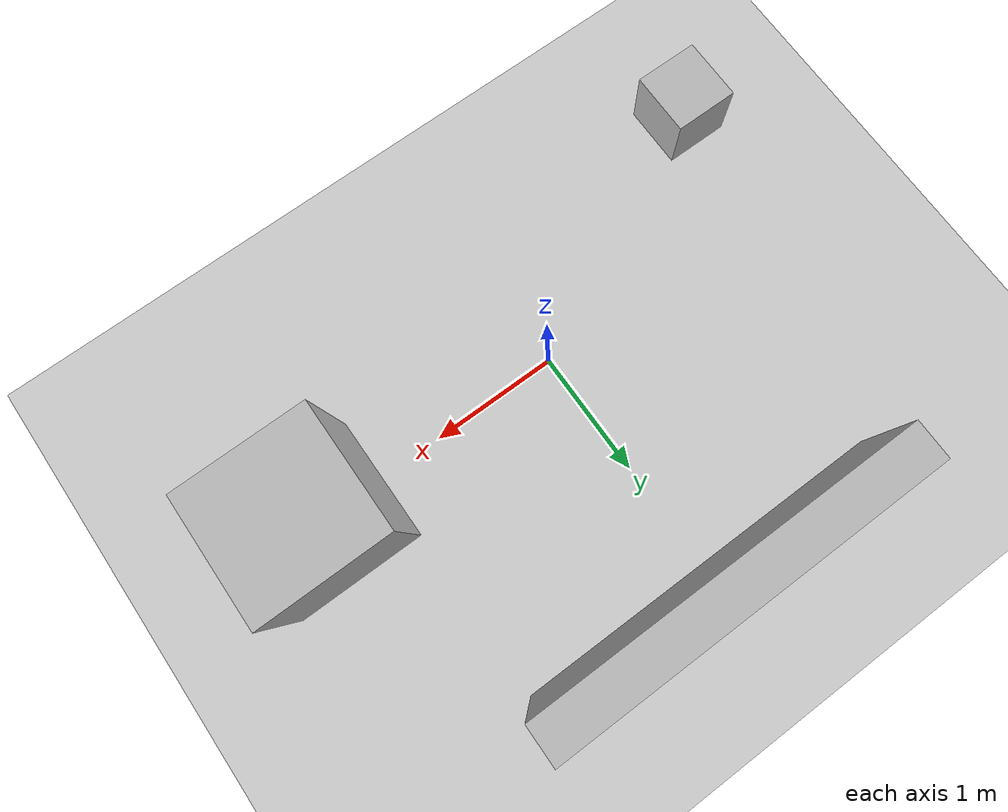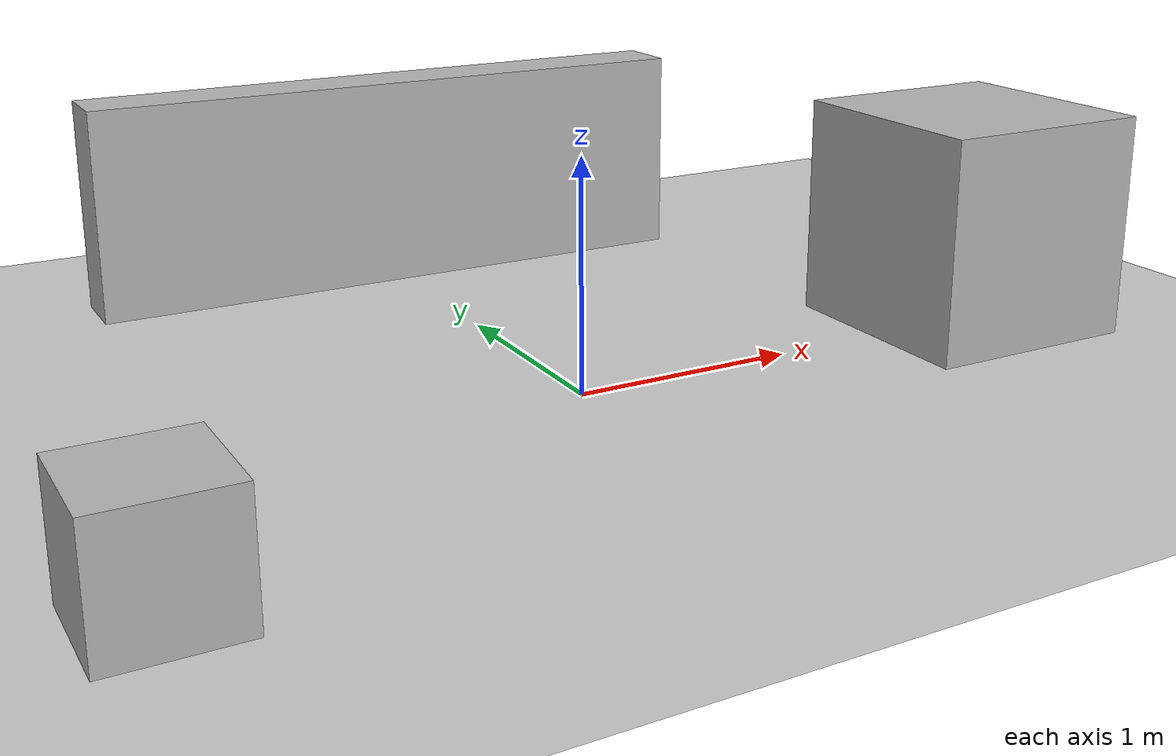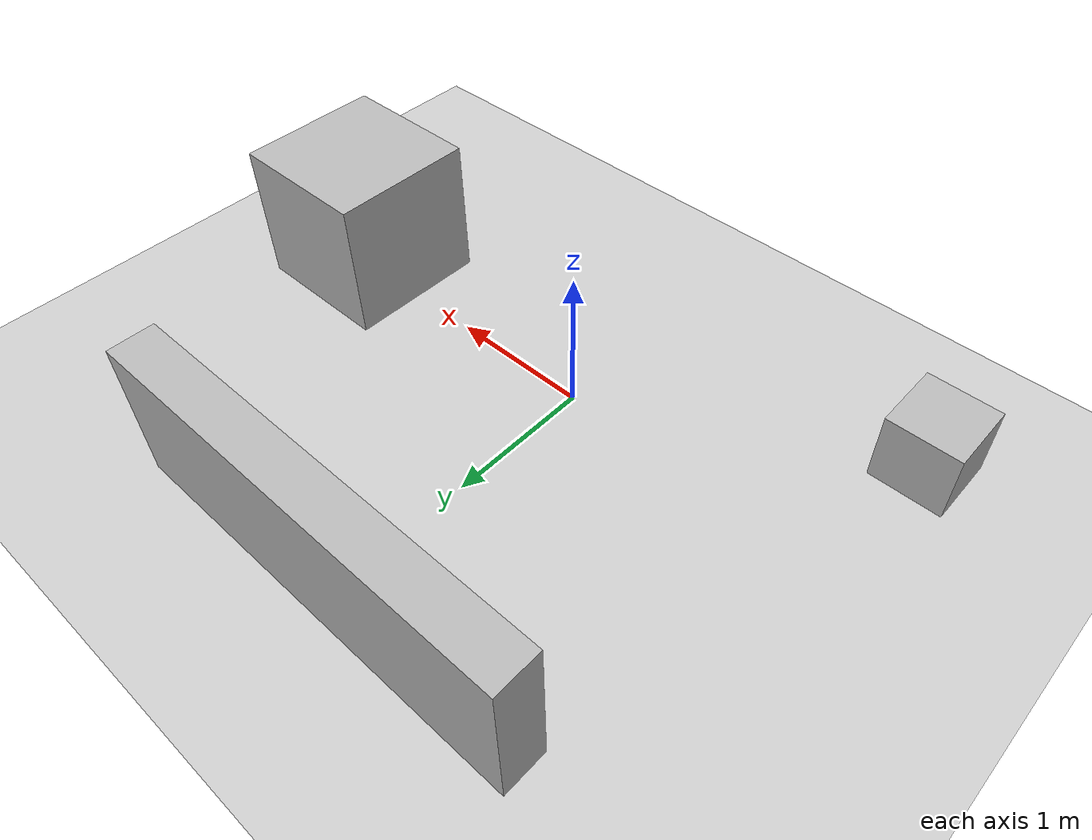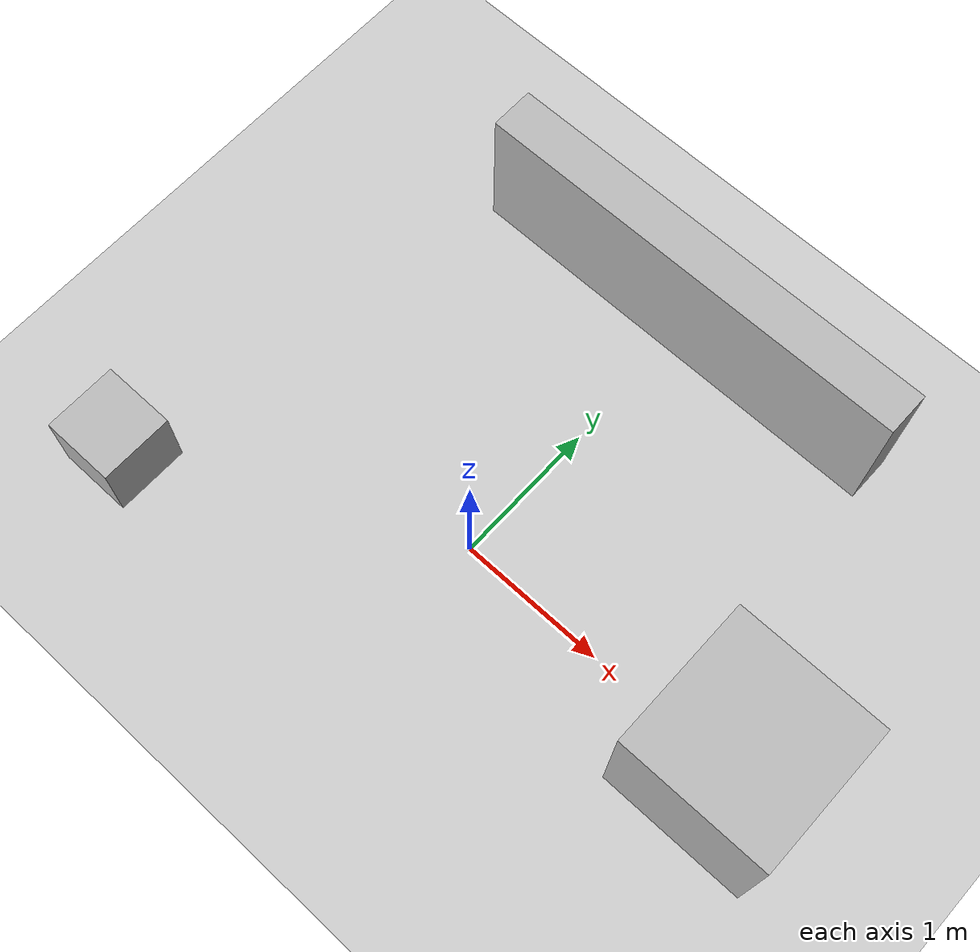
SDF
<?xml version="1.0" ?>
<sdf version="1.11">
  <!--
    Try moving a model using the command in the following CDATA block::
  -->
  <![CDATA[
    gz service -s /world/shapes/set_pose \
               --reqtype gz.msgs.Pose --reptype gz.msgs.Boolean \
               --timeout 300 --req 'name: "box", position: {z: 5.0}'
  ]]>
  <world name="campus">
    <scene>
      <ambient>1.0 1.0 1.0</ambient>
      <background>0.8 0.8 0.8</background>
    </scene>
    <plugin filename="libgz-sim-scene-broadcaster-system.so"
            name="gz::sim::systems::SceneBroadcaster"/>

    <plugin filename="libgz-sim-sensors-system.so"
            name="gz::sim::systems::Sensors"/>

    <plugin filename="libgz-sim-user-commands-system.so"
            name="gz::sim::systems::UserCommands"/>

    <plugin filename="libgz-sim-physics-system.so"
        name="gz::sim::systems::Physics"/>

    <light type="directional" name="sun">
      <cast_shadows>true</cast_shadows>
      <pose>0 0 10 0 0 0</pose>
      <diffuse>0.8 0.8 0.8 1</diffuse>
      <specular>0.2 0.2 0.2 1</specular>
      <attenuation>
        <range>1000</range>
        <constant>0.9</constant>
        <linear>0.01</linear>
        <quadratic>0.001</quadratic>
      </attenuation>
      <direction>-0.5 0.1 -0.9</direction>
    </light>

    <model name="ground_plane">
      <static>true</static>
      <link name="link">
        <collision name="collision">
          <geometry>
            <plane>
              <normal>0 0 1</normal>
              <size>100 100</size>
            </plane>
          </geometry>
        </collision>
        <visual name="visual">
          <geometry>
            <plane>
              <normal>0 0 1</normal>
              <size>100 100</size>
            </plane>
          </geometry>
          <material>
            <ambient>0.8 0.8 0.8 1</ambient>
            <diffuse>0.8 0.8 0.8 1</diffuse>
            <specular>0.8 0.8 0.8 1</specular>
          </material>
        </visual>
      </link>
    </model>
        <!-- Block 1 -->
    <model name="block1">
      <static>true</static>
      <pose>2 0 0.5 0 0 0</pose>
      <link name="link">
        <collision name="col">
          <geometry><box><size>1 1 1</size></box></geometry>
        </collision>
        <visual name="vis">
          <geometry><box><size>1 1 1</size></box></geometry>
        </visual>
      </link>
    </model>

    <!-- Block 2 (a “wall-ish” block) -->
    <model name="block2">
      <static>true</static>
      <pose>0 2 0.5 0 0 0</pose>
      <link name="link">
        <collision name="col">
          <geometry><box><size>3 0.3 1</size></box></geometry>
        </collision>
        <visual name="vis">
          <geometry><box><size>3 0.3 1</size></box></geometry>
        </visual>
      </link>
    </model>

    <!-- Block 3 -->
    <model name="block3">
      <static>true</static>
      <pose>-2 -1 0.25 0 0 0</pose>
      <link name="link">
        <collision name="col">
          <geometry><box><size>0.5 0.5 0.5</size></box></geometry>
        </collision>
        <visual name="vis">
          <geometry><box><size>0.5 0.5 0.5</size></box></geometry>
        </visual>
      </link>
    </model>
  </world>
</sdf>
